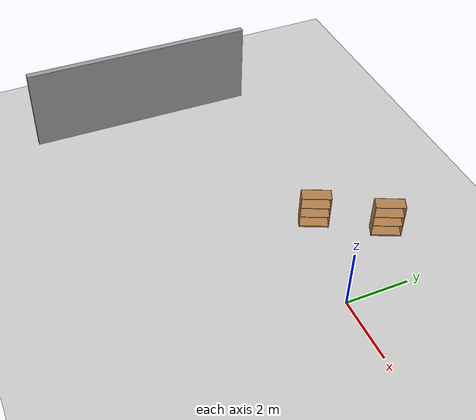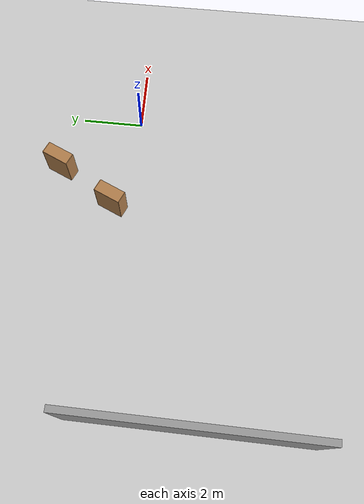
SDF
<sdf version="1.7">
 <world name="default">
  <model name="ground_plane">
   <static>1</static>
   <link name="link">
    <collision name="collision">
     <geometry><plane><normal>0 0 1</normal><size>100 100</size></plane></geometry>
     <surface>
      <contact><collide_bitmask>65535</collide_bitmask></contact>
      <friction><ode><mu>100</mu><mu2>50</mu2></ode></friction>
     </surface>
    </collision>
    <visual name="visual">
     <cast_shadows>0</cast_shadows>
     <geometry><plane><normal>0 0 1</normal><size>100 100</size></plane></geometry>
     <material>
      <script><uri>file://media/materials/scripts/gazebo.material</uri><name>Gazebo/Grey</name></script>
     </material>
    </visual>
   </link>
  </model>
  <model name="grey_wall">
   <static>1</static>
   <link name="link">
    <pose>0 0 1.4 0 -0 0</pose>
    <collision name="collision"><geometry><box><size>7.5 0.2 2.8</size></box></geometry></collision>
    <visual name="visual">
     <cast_shadows>0</cast_shadows>
     <geometry><box><size>7.5 0.2 2.8</size></box></geometry>
     <material>
      <script>
       <uri>model://grey_wall/materials/scripts</uri>
       <uri>model://grey_wall/materials/textures</uri>
       <name>vrc/grey_wall</name>
      </script>
     </material>
    </visual>
   </link>
   <pose>-10.0697 -2.55132 0 0 -0 1.55361</pose>
  </model>
  <model name="bookshelf_clone_3_clone">
   <static>1</static>
   <link name="link">
    <inertial><mass>1</mass></inertial>
    <collision name="back">
     <pose>0 0.005 0.6 0 -0 0</pose>
     <geometry><box><size>0.9 0.01 1.2</size></box></geometry>
    </collision>
    <visual name="visual1">
     <pose>0 0.005 0.6 0 -0 0</pose>
     <geometry><box><size>0.9 0.01 1.2</size></box></geometry>
     <material>
      <script><uri>file://media/materials/scripts/gazebo.material</uri><name>Gazebo/Wood</name></script>
     </material>
    </visual>
    <collision name="left_side">
     <pose>0.45 -0.195 0.6 0 -0 0</pose>
     <geometry><box><size>0.02 0.4 1.2</size></box></geometry>
    </collision>
    <visual name="visual2">
     <pose>0.45 -0.195 0.6 0 -0 0</pose>
     <geometry><box><size>0.02 0.4 1.2</size></box></geometry>
     <material>
      <script><uri>file://media/materials/scripts/gazebo.material</uri><name>Gazebo/Wood</name></script>
     </material>
    </visual>
    <collision name="right_side">
     <pose>-0.45 -0.195 0.6 0 -0 0</pose>
     <geometry><box><size>0.02 0.4 1.2</size></box></geometry>
    </collision>
    <visual name="visual3">
     <pose>-0.45 -0.195 0.6 0 -0 0</pose>
     <geometry><box><size>0.02 0.4 1.2</size></box></geometry>
     <material>
      <script><uri>file://media/materials/scripts/gazebo.material</uri><name>Gazebo/Wood</name></script>
     </material>
    </visual>
    <collision name="bottom">
     <pose>0 -0.195 0.03 0 -0 0</pose>
     <geometry><box><size>0.88 0.4 0.06</size></box></geometry>
    </collision>
    <visual name="visual4">
     <pose>0 -0.195 0.03 0 -0 0</pose>
     <geometry><box><size>0.88 0.4 0.06</size></box></geometry>
     <material>
      <script><uri>file://media/materials/scripts/gazebo.material</uri><name>Gazebo/Wood</name></script>
     </material>
    </visual>
    <collision name="top">
     <pose>0 -0.195 1.19 0 -0 0</pose>
     <geometry><box><size>0.88 0.4 0.02</size></box></geometry>
    </collision>
    <visual name="visual5">
     <pose>0 -0.195 1.19 0 -0 0</pose>
     <geometry><box><size>0.88 0.4 0.02</size></box></geometry>
     <material>
      <script><uri>file://media/materials/scripts/gazebo.material</uri><name>Gazebo/Wood</name></script>
     </material>
    </visual>
    <collision name="low_shelf">
     <pose>0 -0.195 0.43 0 -0 0</pose>
     <geometry><box><size>0.88 0.4 0.02</size></box></geometry>
    </collision>
    <visual name="visual6">
     <pose>0 -0.195 0.43 0 -0 0</pose>
     <geometry><box><size>0.88 0.4 0.02</size></box></geometry>
     <material>
      <script><uri>file://media/materials/scripts/gazebo.material</uri><name>Gazebo/Wood</name></script>
     </material>
    </visual>
    <collision name="high_shelf">
     <pose>0 -0.195 0.8 0 -0 0</pose>
     <geometry><box><size>0.88 0.4 0.02</size></box></geometry>
    </collision>
    <visual name="visual7">
     <pose>0 -0.195 0.8 0 -0 0</pose>
     <geometry><box><size>0.88 0.4 0.02</size></box></geometry>
     <material>
      <script><uri>file://media/materials/scripts/gazebo.material</uri><name>Gazebo/Wood</name></script>
     </material>
    </visual>
   </link>
   <pose>-3.3166 0.685461 0 0 -0 1.14568</pose>
  </model>
  <model name="bookshelf_clone_3_clone_clone">
   <static>1</static>
   <link name="link">
    <inertial><mass>1</mass></inertial>
    <collision name="back">
     <pose>0 0.005 0.6 0 -0 0</pose>
     <geometry><box><size>0.9 0.01 1.2</size></box></geometry>
    </collision>
    <visual name="visual1">
     <pose>0 0.005 0.6 0 -0 0</pose>
     <geometry><box><size>0.9 0.01 1.2</size></box></geometry>
     <material>
      <script><uri>file://media/materials/scripts/gazebo.material</uri><name>Gazebo/Wood</name></script>
     </material>
    </visual>
    <collision name="left_side">
     <pose>0.45 -0.195 0.6 0 -0 0</pose>
     <geometry><box><size>0.02 0.4 1.2</size></box></geometry>
    </collision>
    <visual name="visual2">
     <pose>0.45 -0.195 0.6 0 -0 0</pose>
     <geometry><box><size>0.02 0.4 1.2</size></box></geometry>
     <material>
      <script><uri>file://media/materials/scripts/gazebo.material</uri><name>Gazebo/Wood</name></script>
     </material>
    </visual>
    <collision name="right_side">
     <pose>-0.45 -0.195 0.6 0 -0 0</pose>
     <geometry><box><size>0.02 0.4 1.2</size></box></geometry>
    </collision>
    <visual name="visual3">
     <pose>-0.45 -0.195 0.6 0 -0 0</pose>
     <geometry><box><size>0.02 0.4 1.2</size></box></geometry>
     <material>
      <script><uri>file://media/materials/scripts/gazebo.material</uri><name>Gazebo/Wood</name></script>
     </material>
    </visual>
    <collision name="bottom">
     <pose>0 -0.195 0.03 0 -0 0</pose>
     <geometry><box><size>0.88 0.4 0.06</size></box></geometry>
    </collision>
    <visual name="visual4">
     <pose>0 -0.195 0.03 0 -0 0</pose>
     <geometry><box><size>0.88 0.4 0.06</size></box></geometry>
     <material>
      <script><uri>file://media/materials/scripts/gazebo.material</uri><name>Gazebo/Wood</name></script>
     </material>
    </visual>
    <collision name="top">
     <pose>0 -0.195 1.19 0 -0 0</pose>
     <geometry><box><size>0.88 0.4 0.02</size></box></geometry>
    </collision>
    <visual name="visual5">
     <pose>0 -0.195 1.19 0 -0 0</pose>
     <geometry><box><size>0.88 0.4 0.02</size></box></geometry>
     <material>
      <script><uri>file://media/materials/scripts/gazebo.material</uri><name>Gazebo/Wood</name></script>
     </material>
    </visual>
    <collision name="low_shelf">
     <pose>0 -0.195 0.43 0 -0 0</pose>
     <geometry><box><size>0.88 0.4 0.02</size></box></geometry>
    </collision>
    <visual name="visual6">
     <pose>0 -0.195 0.43 0 -0 0</pose>
     <geometry><box><size>0.88 0.4 0.02</size></box></geometry>
     <material>
      <script><uri>file://media/materials/scripts/gazebo.material</uri><name>Gazebo/Wood</name></script>
     </material>
    </visual>
    <collision name="high_shelf">
     <pose>0 -0.195 0.8 0 -0 0</pose>
     <geometry><box><size>0.88 0.4 0.02</size></box></geometry>
    </collision>
    <visual name="visual7">
     <pose>0 -0.195 0.8 0 -0 0</pose>
     <geometry><box><size>0.88 0.4 0.02</size></box></geometry>
     <material>
      <script><uri>file://media/materials/scripts/gazebo.material</uri><name>Gazebo/Wood</name></script>
     </material>
    </visual>
   </link>
   <pose>-2.13973 2.52919 0 0 -0 1.14568</pose>
  </model>
 </world>
</sdf>
